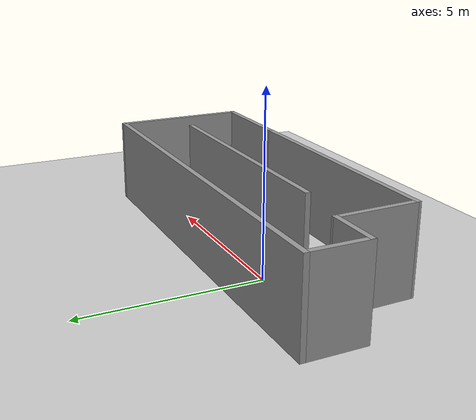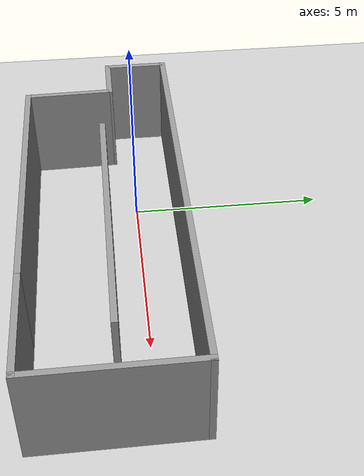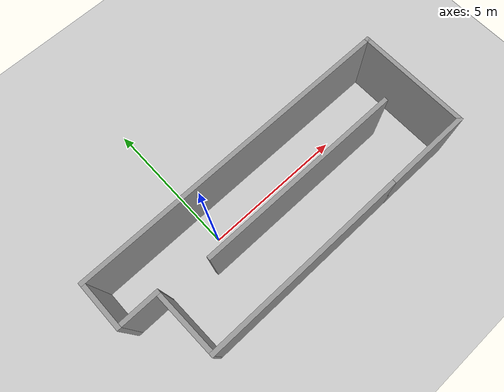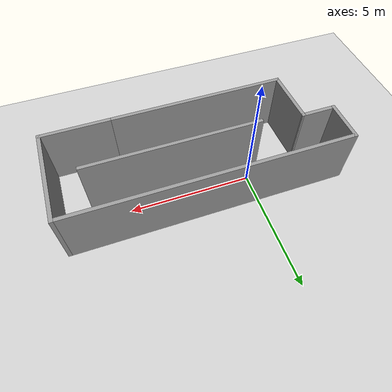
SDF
<sdf version="1.7">
 <world name="default">
  <light name="sun" type="directional">
   <pose>0 0 10 0 -0 0</pose>
   <diffuse>0.8 0.8 0.8 1</diffuse>
   <specular>0.2 0.2 0.2 1</specular>
   <attenuation>
    <range>1000</range>
    <constant>0.9</constant>
    <linear>0.01</linear>
    <quadratic>0.001</quadratic>
   </attenuation>
   <direction>-0.5 0.1 -0.9</direction>
   <spot><inner_angle>0</inner_angle><outer_angle>0</outer_angle><falloff>0</falloff></spot>
  </light>
  <model name="ground_plane">
   <static>1</static>
   <link name="link">
    <collision name="collision">
     <geometry><plane><normal>0 0 1</normal><size>100 100</size></plane></geometry>
     <surface>
      <contact><collide_bitmask>65535</collide_bitmask></contact>
      <friction><ode><mu>100</mu><mu2>50</mu2></ode></friction>
     </surface>
    </collision>
    <visual name="visual">
     <cast_shadows>0</cast_shadows>
     <geometry><plane><normal>0 0 1</normal><size>100 100</size></plane></geometry>
     <material>
      <script><uri>file://media/materials/scripts/gazebo.material</uri><name>Gazebo/Grey</name></script>
     </material>
    </visual>
   </link>
  </model>
  <gravity>0 0 -9.8</gravity>
  <magnetic_field>6e-06 2.3e-05 -4.2e-05</magnetic_field>
  <atmosphere type="adiabatic"/>
  <physics type="ode">
   <max_step_size>0.001</max_step_size>
   <real_time_factor>1</real_time_factor>
   <real_time_update_rate>1000</real_time_update_rate>
  </physics>
  <scene><ambient>0.4 0.4 0.4 1</ambient><background>0.7 0.7 0.7 1</background><shadows>1</shadows></scene>
  <spherical_coordinates>
   <surface_model>EARTH_WGS84</surface_model>
   <latitude_deg>0</latitude_deg>
   <longitude_deg>0</longitude_deg>
   <elevation>0</elevation>
   <heading_deg>0</heading_deg>
  </spherical_coordinates>
  <model name="Untitled1">
   <pose>1.935 -0.845824 0 0 -0 0</pose>
   <link name="Wall_0">
    <collision name="Wall_0_Collision">
     <geometry><box><size>7.25 0.15 2.5</size></box></geometry>
     <pose>0 0 1.25 0 -0 0</pose>
    </collision>
    <visual name="Wall_0_Visual">
     <pose>0 0 1.25 0 -0 0</pose>
     <geometry><box><size>7.25 0.15 2.5</size></box></geometry>
     <material>
      <script><uri>file://media/materials/scripts/gazebo.material</uri><name>Gazebo/Grey</name></script>
      <ambient>1 1 1 1</ambient>
     </material>
     <meta><layer>0</layer></meta>
    </visual>
    <pose>-0.725 -1.92418 0 0 -0 0</pose>
   </link>
   <link name="Wall_1">
    <collision name="Wall_1_Collision">
     <geometry><box><size>3 0.15 2.5</size></box></geometry>
     <pose>0 0 1.25 0 -0 0</pose>
    </collision>
    <visual name="Wall_1_Visual">
     <pose>0 0 1.25 0 -0 0</pose>
     <geometry><box><size>3 0.15 2.5</size></box></geometry>
     <material>
      <script><uri>file://media/materials/scripts/gazebo.material</uri><name>Gazebo/Grey</name></script>
      <ambient>1 1 1 1</ambient>
     </material>
     <meta><layer>0</layer></meta>
    </visual>
    <pose>4.25 -1.92418 0 0 -0 0</pose>
   </link>
   <link name="Wall_2">
    <collision name="Wall_2_Collision">
     <geometry><box><size>4 0.15 2.5</size></box></geometry>
     <pose>0 0 1.25 0 -0 0</pose>
    </collision>
    <visual name="Wall_2_Visual">
     <pose>0 0 1.25 0 -0 0</pose>
     <geometry><box><size>4 0.15 2.5</size></box></geometry>
     <material>
      <script><uri>file://media/materials/scripts/gazebo.material</uri><name>Gazebo/Grey</name></script>
      <ambient>1 1 1 1</ambient>
     </material>
     <meta><layer>0</layer></meta>
    </visual>
    <pose>5.675 0.000824 0 0 -0 1.5708</pose>
   </link>
   <link name="Wall_3">
    <collision name="Wall_3_Collision">
     <geometry><box><size>11.5 0.15 2.5</size></box></geometry>
     <pose>0 0 1.25 0 -0 0</pose>
    </collision>
    <visual name="Wall_3_Visual">
     <pose>0 0 1.25 0 -0 0</pose>
     <geometry><box><size>11.5 0.15 2.5</size></box></geometry>
     <material>
      <script><uri>file://media/materials/scripts/gazebo.material</uri><name>Gazebo/Grey</name></script>
      <ambient>1 1 1 1</ambient>
     </material>
     <meta><layer>0</layer></meta>
    </visual>
    <pose>-0 1.92582 0 0 -0 3.14159</pose>
   </link>
   <link name="Wall_4">
    <collision name="Wall_4_Collision">
     <geometry><box><size>1.75 0.15 2.5</size></box></geometry>
     <pose>0 0 1.25 0 -0 0</pose>
    </collision>
    <visual name="Wall_4_Visual">
     <pose>0 0 1.25 0 -0 0</pose>
     <geometry><box><size>1.75 0.15 2.5</size></box></geometry>
     <material>
      <script><uri>file://media/materials/scripts/gazebo.material</uri><name>Gazebo/Grey</name></script>
      <ambient>1 1 1 1</ambient>
     </material>
     <meta><layer>0</layer></meta>
    </visual>
    <pose>-5.675 1.12582 0 0 -0 -1.5708</pose>
   </link>
   <link name="Wall_5">
    <collision name="Wall_5_Collision">
     <geometry><box><size>1.5 0.15 2.5</size></box></geometry>
     <pose>0 0 1.25 0 -0 0</pose>
    </collision>
    <visual name="Wall_5_Visual">
     <pose>0 0 1.25 0 -0 0</pose>
     <geometry><box><size>1.5 0.15 2.5</size></box></geometry>
     <material>
      <script><uri>file://media/materials/scripts/gazebo.material</uri><name>Gazebo/Grey</name></script>
      <ambient>1 1 1 1</ambient>
     </material>
     <meta><layer>0</layer></meta>
    </visual>
    <pose>-5 0.325824 0 0 -0 0</pose>
   </link>
   <link name="Wall_6">
    <collision name="Wall_6_Collision">
     <geometry><box><size>2.40056 0.15 2.5</size></box></geometry>
     <pose>0 0 1.25 0 -0 0</pose>
    </collision>
    <visual name="Wall_6_Visual">
     <pose>0 0 1.25 0 -0 0</pose>
     <geometry><box><size>2.40056 0.15 2.5</size></box></geometry>
     <material>
      <script><uri>file://media/materials/scripts/gazebo.material</uri><name>Gazebo/Grey</name></script>
      <ambient>1 1 1 1</ambient>
     </material>
     <meta><layer>0</layer></meta>
    </visual>
    <pose>-4.3 -0.799176 0 0 -0 -1.54858</pose>
   </link>
   <link name="Wall_8">
    <collision name="Wall_8_Collision">
     <geometry><box><size>7.25 0.15 2.5</size></box></geometry>
     <pose>0 0 1.25 0 -0 0</pose>
    </collision>
    <visual name="Wall_8_Visual">
     <pose>0 0 1.25 0 -0 0</pose>
     <geometry><box><size>7.25 0.15 2.5</size></box></geometry>
     <material>
      <script><uri>file://media/materials/scripts/gazebo.material</uri><name>Gazebo/Grey</name></script>
      <ambient>1 1 1 1</ambient>
     </material>
     <meta><layer>0</layer></meta>
    </visual>
    <pose>0.92638 0.067544 0 0 -0 3.14159</pose>
   </link>
   <static>1</static>
  </model>
 </world>
</sdf>
